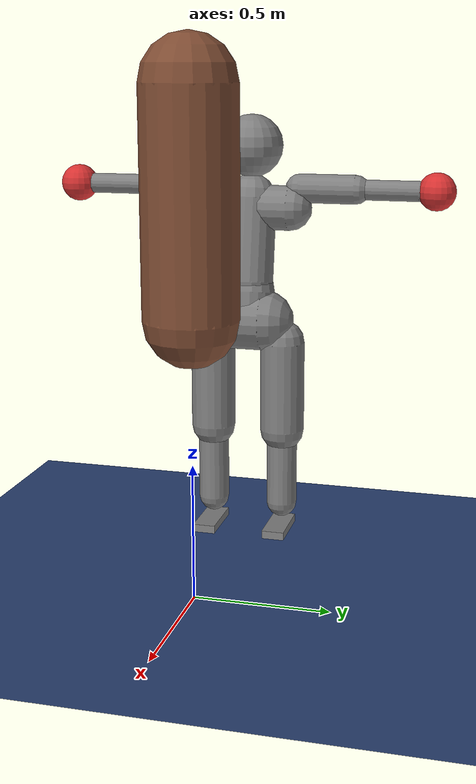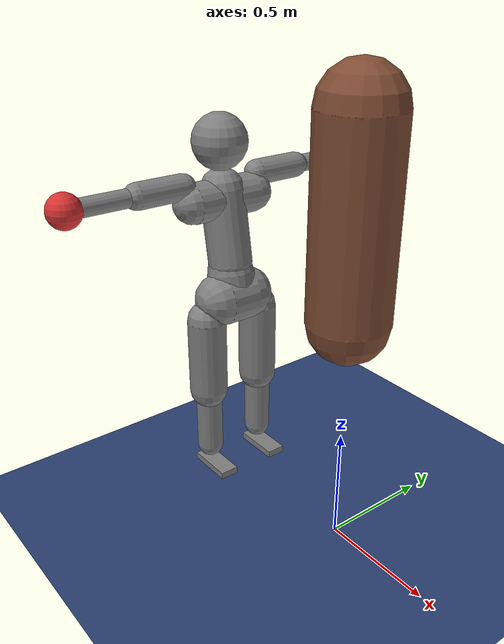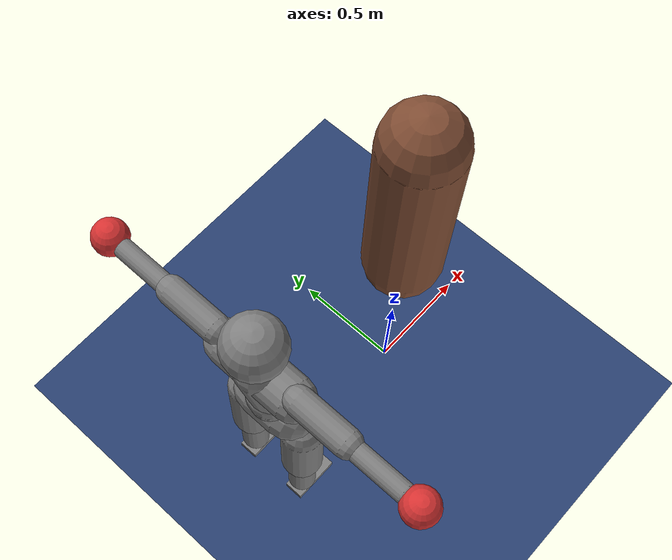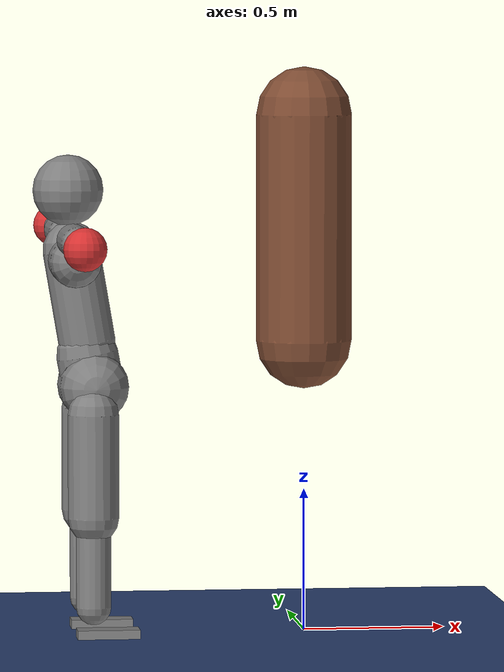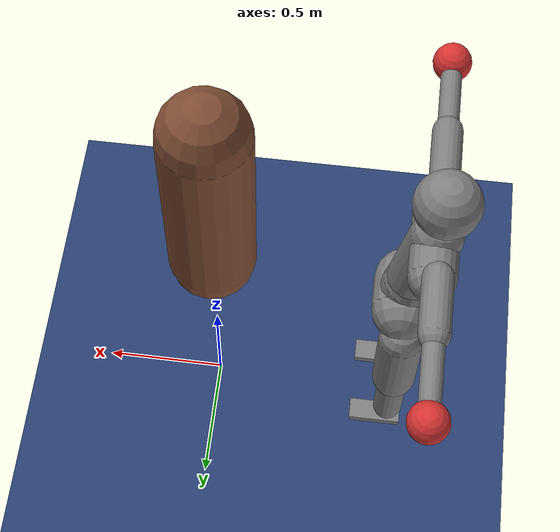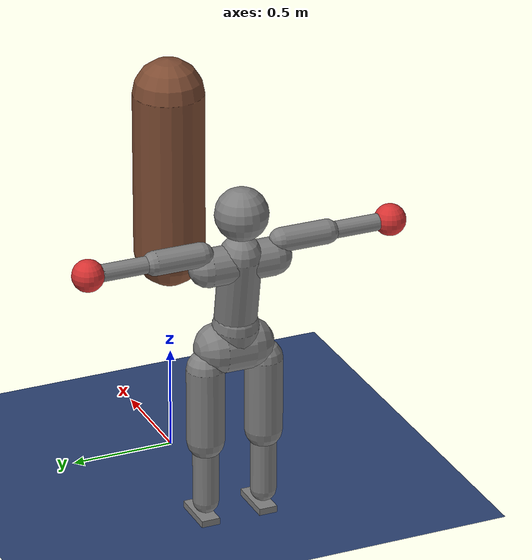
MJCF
<mujoco model="grandma_bag">
  <compiler angle="degree" inertiafromgeom="true" autolimits="true"/>
  <option timestep="0.005" iterations="10" ls_iterations="10" integrator="implicitfast">
    <flag eulerdamp="disable"/>
  </option>
  <default>
    <geom contype="1" conaffinity="1" condim="3" friction="1.0 0.005 0.0001" density="1000" margin="0"/>
    <joint limited="true"/>
    <position ctrllimited="true"/>
  </default>
  <asset>
    <texture name="grid" type="2d" builtin="checker" rgb1=".18 .28 .48" rgb2=".14 .22 .40" width="300" height="300"/>
    <material name="grid" texture="grid" texrepeat="6 6" reflectance="0"/>
  </asset>
  <worldbody>
    <light pos="0 0 5" dir="0 0 -1" directional="true"/>
    <geom name="floor" type="plane" size="0 0 0.05" material="grid" friction="1.0 0.005 0.0001"/>

    <body name="a_pelvis" pos="-0.7500 0.0000 0.8758" quat="1.00000 0 0 0.00000">
      <freejoint name="a_root"/>
      <geom name="a_pelvis_geom" type="capsule" fromto="0.0000 -0.0700 0.0000 0.0000 0.0700 0.0000" size="0.1216" mass="7.2734" />
      <geom name="a_pelvis_up" type="capsule" fromto="0.0000 0.0000 0.0000 -0.0203 0.0000 0.1106" size="0.1094" mass="5.0380" />
      <body name="a_torso" pos="-0.0203 0.0000 0.1306">
        <joint name="a_abdomen_z" type="hinge" axis="0 0 1" range="-45 45" damping="0.5" armature="0.08" stiffness="0"/>
        <joint name="a_abdomen_y" type="hinge" axis="0 1 0" range="-60 30" damping="0.5" armature="0.08" stiffness="0"/>
        <joint name="a_abdomen_x" type="hinge" axis="1 0 0" range="-35 35" damping="0.5" armature="0.08" stiffness="0"/>
        <geom name="a_torso_geom" type="capsule" fromto="0.0000 0.0000 0.0200 -0.0561 0.0000 0.3509" size="0.1004" mass="30.7785" />
        <geom name="a_chest_geom" type="capsule" fromto="-0.0509 -0.1584 0.3169 -0.0509 0.1584 0.3169" size="0.0904" mass="0.5"/>
        <geom name="a_head_geom" type="sphere" pos="-0.0666 0.0000 0.5613" size="0.1250" mass="7.0227" />
        <body name="a_upper_arm_l" pos="-0.0636 0.1980 0.3961">
          <joint name="a_shoulder_x_l" type="hinge" axis="1 0 0" range="-170 30" damping="0.5" armature="0.03" stiffness="0"/>
          <joint name="a_shoulder_z_l" type="hinge" axis="0 0 1" range="-110 110" damping="0.5" armature="0.03" stiffness="0"/>
          <geom name="a_upper_arm_l_geom" type="capsule" fromto="0.0000 0.0000 0.0000 0.0000 0.2236 0.0000" size="0.0580" mass="2.4276" />
          <body name="a_forearm_l" pos="0.0000 0.2236 0.0000">
            <joint name="a_elbow_l" type="hinge" axis="0 0 1" range="-150 0" damping="0.5" armature="0.02" stiffness="0"/>
            <geom name="a_forearm_l_geom" type="capsule" fromto="0.0000 0.0000 0.0000 0.0000 0.2519 0.0000" size="0.0402" mass="1.3872" />
            <geom name="a_glove_l" type="sphere" pos="0.0000 0.3194 0.0000" size="0.0750" mass="0.8032" rgba="0.85 0.2 0.2 1"/>
          </body>
        </body>
        <body name="a_upper_arm_r" pos="-0.0636 -0.1980 0.3961">
          <joint name="a_shoulder_x_r" type="hinge" axis="1 0 0" range="-30 170" damping="0.5" armature="0.03" stiffness="0"/>
          <joint name="a_shoulder_z_r" type="hinge" axis="0 0 1" range="-110 110" damping="0.5" armature="0.03" stiffness="0"/>
          <geom name="a_upper_arm_r_geom" type="capsule" fromto="0.0000 0.0000 0.0000 0.0000 -0.2236 0.0000" size="0.0580" mass="2.4276" />
          <body name="a_forearm_r" pos="0.0000 -0.2236 0.0000">
            <joint name="a_elbow_r" type="hinge" axis="0 0 1" range="0 150" damping="0.5" armature="0.02" stiffness="0"/>
            <geom name="a_forearm_r_geom" type="capsule" fromto="0.0000 0.0000 0.0000 0.0000 -0.2519 0.0000" size="0.0402" mass="1.3872" />
            <geom name="a_glove_r" type="sphere" pos="0.0000 -0.3194 0.0000" size="0.0750" mass="0.8032" rgba="0.85 0.2 0.2 1"/>
          </body>
        </body>
      </body>
      <body name="a_thigh_l" pos="-0.0109 0.1457 -0.0890">
        <joint name="a_hip_x_l" type="hinge" axis="1 0 0" range="-40 40" damping="0.5" armature="0.1" stiffness="0"/>
        <joint name="a_hip_z_l" type="hinge" axis="0 0 1" range="-35 35" damping="0.5" armature="0.1" stiffness="0"/>
        <joint name="a_hip_y_l" type="hinge" axis="0 1 0" range="-120 30" damping="0.5" armature="0.1" stiffness="0"/>
        <geom name="a_thigh_l_geom" type="capsule" fromto="0.0000 0.0000 0.0000 0.0000 0.0000 -0.3653" size="0.0900" mass="8.6700" />
        <body name="a_shin_l" pos="0.0000 0.0000 -0.3653">
          <joint name="a_knee_l" type="hinge" axis="0 1 0" range="0 150" damping="0.5" armature="0.1" stiffness="0"/>
          <geom name="a_shin_l_geom" type="capsule" fromto="0.0000 0.0000 0.0000 0.0000 0.0000 -0.3152" size="0.0620" mass="4.0316" />
          <body name="a_foot_l" pos="0.0000 0.0000 -0.3152">
            <joint name="a_ankle_y_l" type="hinge" axis="0 1 0" range="-20 50" damping="0.5" armature="0.03" stiffness="0"/>
            <joint name="a_ankle_x_l" type="hinge" axis="1 0 0" range="-25 25" damping="0.5" armature="0.03" stiffness="0"/>
            <geom name="a_foot_l_geom" type="box" pos="0.0506 0.0000 -0.1050" size="0.1100 0.0450 0.0280" mass="1.2572" friction="1.0 0.005 0.0001"/>
            <site name="a_foot_l_site" pos="0.0506 0.0000 -0.1050" size="0.01"/>
          </body>
        </body>
      </body>
      <body name="a_thigh_r" pos="-0.0109 -0.1457 -0.0890">
        <joint name="a_hip_x_r" type="hinge" axis="1 0 0" range="-40 40" damping="0.5" armature="0.1" stiffness="0"/>
        <joint name="a_hip_z_r" type="hinge" axis="0 0 1" range="-35 35" damping="0.5" armature="0.1" stiffness="0"/>
        <joint name="a_hip_y_r" type="hinge" axis="0 1 0" range="-120 30" damping="0.5" armature="0.1" stiffness="0"/>
        <geom name="a_thigh_r_geom" type="capsule" fromto="0.0000 0.0000 0.0000 0.0000 0.0000 -0.3653" size="0.0900" mass="8.6700" />
        <body name="a_shin_r" pos="0.0000 0.0000 -0.3653">
          <joint name="a_knee_r" type="hinge" axis="0 1 0" range="0 150" damping="0.5" armature="0.1" stiffness="0"/>
          <geom name="a_shin_r_geom" type="capsule" fromto="0.0000 0.0000 0.0000 0.0000 0.0000 -0.3152" size="0.0620" mass="4.0316" />
          <body name="a_foot_r" pos="0.0000 0.0000 -0.3152">
            <joint name="a_ankle_y_r" type="hinge" axis="0 1 0" range="-20 50" damping="0.5" armature="0.03" stiffness="0"/>
            <joint name="a_ankle_x_r" type="hinge" axis="1 0 0" range="-25 25" damping="0.5" armature="0.03" stiffness="0"/>
            <geom name="a_foot_r_geom" type="box" pos="0.0506 0.0000 -0.1050" size="0.1100 0.0450 0.0280" mass="1.2572" friction="1.0 0.005 0.0001"/>
            <site name="a_foot_r_site" pos="0.0506 0.0000 -0.1050" size="0.01"/>
          </body>
        </body>
      </body>
    </body>
    <body name="bag" pos="0 0 2.45">
      <joint name="bag_swing" type="ball" damping="6"/>
      <geom name="bag_geom" type="capsule" fromto="0 0 -0.62 0 0 -1.42" size="0.17" mass="35" rgba="0.5 0.3 0.2 1"/>
      <site name="bag_head" pos="0 0 -0.82" size="0.02"/>
      <site name="bag_body" pos="0 0 -1.22" size="0.02"/>
    </body>
  </worldbody>
  <contact>
    <exclude body1="a_pelvis" body2="a_torso"/>
    <exclude body1="a_pelvis" body2="a_thigh_l"/>
    <exclude body1="a_thigh_l" body2="a_shin_l"/>
    <exclude body1="a_shin_l" body2="a_foot_l"/>
    <exclude body1="a_torso" body2="a_upper_arm_l"/>
    <exclude body1="a_upper_arm_l" body2="a_forearm_l"/>
    <exclude body1="a_pelvis" body2="a_thigh_r"/>
    <exclude body1="a_thigh_r" body2="a_shin_r"/>
    <exclude body1="a_shin_r" body2="a_foot_r"/>
    <exclude body1="a_torso" body2="a_upper_arm_r"/>
    <exclude body1="a_upper_arm_r" body2="a_forearm_r"/>
  </contact>
  <actuator>
    <position name="a_abdomen_z" joint="a_abdomen_z" kp="238.05" kv="11.109" forcerange="-89.93 89.93" ctrlrange="-0.7854 0.7854"/>
    <position name="a_abdomen_y" joint="a_abdomen_y" kp="238.05" kv="11.109" forcerange="-89.93 89.93" ctrlrange="-1.0472 0.5236"/>
    <position name="a_abdomen_x" joint="a_abdomen_x" kp="238.05" kv="11.109" forcerange="-89.93 89.93" ctrlrange="-0.6109 0.6109"/>
    <position name="a_shoulder_x_l" joint="a_shoulder_x_l" kp="84.64" kv="4.232" forcerange="-52.9 52.9" ctrlrange="-2.9671 0.5236"/>
    <position name="a_shoulder_z_l" joint="a_shoulder_z_l" kp="84.64" kv="4.232" forcerange="-52.9 52.9" ctrlrange="-1.9199 1.9199"/>
    <position name="a_elbow_l" joint="a_elbow_l" kp="58.19" kv="2.909" forcerange="-37.03 37.03" ctrlrange="-2.6180 0.0000"/>
    <position name="a_shoulder_x_r" joint="a_shoulder_x_r" kp="84.64" kv="4.232" forcerange="-52.9 52.9" ctrlrange="-0.5236 2.9671"/>
    <position name="a_shoulder_z_r" joint="a_shoulder_z_r" kp="84.64" kv="4.232" forcerange="-52.9 52.9" ctrlrange="-1.9199 1.9199"/>
    <position name="a_elbow_r" joint="a_elbow_r" kp="58.19" kv="2.909" forcerange="-37.03 37.03" ctrlrange="0.0000 2.6180"/>
    <position name="a_hip_x_l" joint="a_hip_x_l" kp="317.4" kv="15.87" forcerange="-126.96 126.96" ctrlrange="-0.6981 0.6981"/>
    <position name="a_hip_z_l" joint="a_hip_z_l" kp="317.4" kv="15.87" forcerange="-126.96 126.96" ctrlrange="-0.6109 0.6109"/>
    <position name="a_hip_y_l" joint="a_hip_y_l" kp="317.4" kv="15.87" forcerange="-126.96 126.96" ctrlrange="-2.0944 0.5236"/>
    <position name="a_knee_l" joint="a_knee_l" kp="317.4" kv="15.87" forcerange="-137.54 137.54" ctrlrange="0.0000 2.6180"/>
    <position name="a_ankle_y_l" joint="a_ankle_y_l" kp="396.75" kv="15.87" forcerange="-116.38 116.38" ctrlrange="-0.3491 0.8727"/>
    <position name="a_ankle_x_l" joint="a_ankle_x_l" kp="42.32" kv="2.116" forcerange="-31.74 31.74" ctrlrange="-0.4363 0.4363"/>
    <position name="a_hip_x_r" joint="a_hip_x_r" kp="317.4" kv="15.87" forcerange="-126.96 126.96" ctrlrange="-0.6981 0.6981"/>
    <position name="a_hip_z_r" joint="a_hip_z_r" kp="317.4" kv="15.87" forcerange="-126.96 126.96" ctrlrange="-0.6109 0.6109"/>
    <position name="a_hip_y_r" joint="a_hip_y_r" kp="317.4" kv="15.87" forcerange="-126.96 126.96" ctrlrange="-2.0944 0.5236"/>
    <position name="a_knee_r" joint="a_knee_r" kp="317.4" kv="15.87" forcerange="-137.54 137.54" ctrlrange="0.0000 2.6180"/>
    <position name="a_ankle_y_r" joint="a_ankle_y_r" kp="396.75" kv="15.87" forcerange="-116.38 116.38" ctrlrange="-0.3491 0.8727"/>
    <position name="a_ankle_x_r" joint="a_ankle_x_r" kp="42.32" kv="2.116" forcerange="-31.74 31.74" ctrlrange="-0.4363 0.4363"/>
  </actuator>
  <keyframe>
    <key name="stand" qpos="-0.7500 0.0000 0.8853 1.00000 0 0 0.00000 0.0000 0.0000 0.0000 -1.3265 -0.7330 -1.9548 1.3265 0.7330 1.9548 0.0000 0.0000 -0.1352 0.4538 -0.3186 0.0000 0.0000 0.0000 -0.1352 0.4538 -0.3186 0.0000 1 0 0 0"/>
  </keyframe>
</mujoco>
